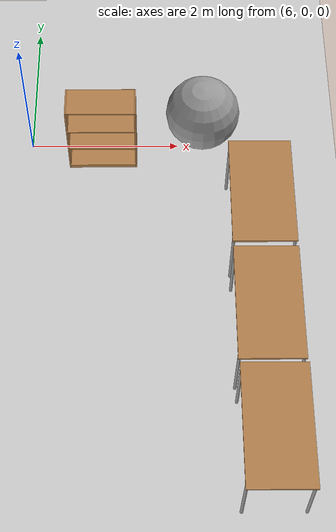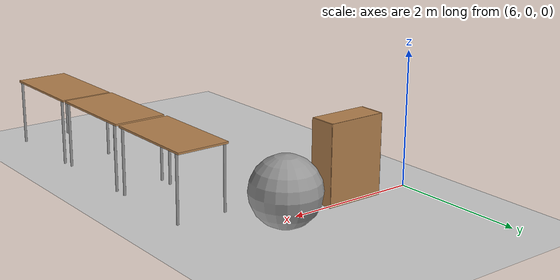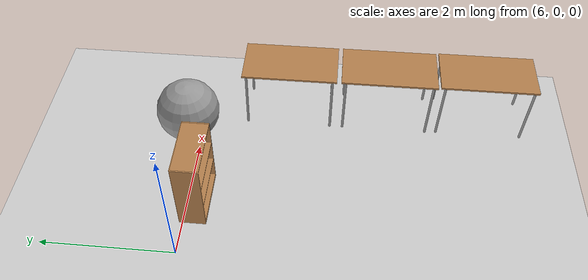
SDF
<sdf version="1.7">
 <world name="default">
  <model name="ground_plane">
   <static>1</static>
   <link name="link">
    <collision name="collision">
     <geometry><plane><normal>0 0 1</normal><size>100 100</size></plane></geometry>
     <surface><friction><ode><mu>100</mu><mu2>50</mu2></ode></friction></surface>
    </collision>
    <visual name="visual">
     <cast_shadows>0</cast_shadows>
     <geometry><plane><normal>0 0 1</normal><size>100 100</size></plane></geometry>
     <material>
      <script><uri>file://media/materials/scripts/gazebo.material</uri><name>Gazebo/Grey</name></script>
     </material>
    </visual>
   </link>
  </model>
  <model name="table_0">
   <static>1</static>
   <link name="link">
    <collision name="surface">
     <pose>0 0 1 0 -0 0</pose>
     <geometry><box><size>1.5 0.8 0.03</size></box></geometry>
     <surface><friction><ode><mu>0.6</mu><mu2>0.6</mu2></ode></friction></surface>
    </collision>
    <visual name="visual1">
     <pose>0 0 1 0 -0 0</pose>
     <geometry><box><size>1.5 0.8 0.03</size></box></geometry>
     <material>
      <script><uri>file://media/materials/scripts/gazebo.material</uri><name>Gazebo/Wood</name></script>
     </material>
    </visual>
    <collision name="front_left_leg">
     <pose>0.68 0.38 0.5 0 -0 0</pose>
     <geometry><cylinder><radius>0.02</radius><length>1</length></cylinder></geometry>
    </collision>
    <visual name="front_left_leg">
     <pose>0.68 0.38 0.5 0 -0 0</pose>
     <geometry><cylinder><radius>0.02</radius><length>1</length></cylinder></geometry>
     <material>
      <script><uri>file://media/materials/scripts/gazebo.material</uri><name>Gazebo/Grey</name></script>
     </material>
    </visual>
    <collision name="front_right_leg">
     <pose>0.68 -0.38 0.5 0 -0 0</pose>
     <geometry><cylinder><radius>0.02</radius><length>1</length></cylinder></geometry>
    </collision>
    <visual name="front_right_leg">
     <pose>0.68 -0.38 0.5 0 -0 0</pose>
     <geometry><cylinder><radius>0.02</radius><length>1</length></cylinder></geometry>
     <material>
      <script><uri>file://media/materials/scripts/gazebo.material</uri><name>Gazebo/Grey</name></script>
     </material>
    </visual>
    <collision name="back_right_leg">
     <pose>-0.68 -0.38 0.5 0 -0 0</pose>
     <geometry><cylinder><radius>0.02</radius><length>1</length></cylinder></geometry>
    </collision>
    <visual name="back_right_leg">
     <pose>-0.68 -0.38 0.5 0 -0 0</pose>
     <geometry><cylinder><radius>0.02</radius><length>1</length></cylinder></geometry>
     <material>
      <script><uri>file://media/materials/scripts/gazebo.material</uri><name>Gazebo/Grey</name></script>
     </material>
    </visual>
    <collision name="back_left_leg">
     <pose>-0.68 0.38 0.5 0 -0 0</pose>
     <geometry><cylinder><radius>0.02</radius><length>1</length></cylinder></geometry>
    </collision>
    <visual name="back_left_leg">
     <pose>-0.68 0.38 0.5 0 -0 0</pose>
     <geometry><cylinder><radius>0.02</radius><length>1</length></cylinder></geometry>
     <material>
      <script><uri>file://media/materials/scripts/gazebo.material</uri><name>Gazebo/Grey</name></script>
     </material>
    </visual>
   </link>
   <pose>9.03648 -1.38718 0 0 0 -1.56997</pose>
  </model>
  <model name="table_0_clone">
   <static>1</static>
   <link name="link">
    <collision name="surface">
     <pose>0 0 1 0 -0 0</pose>
     <geometry><box><size>1.5 0.8 0.03</size></box></geometry>
     <surface><friction><ode><mu>0.6</mu><mu2>0.6</mu2></ode></friction></surface>
    </collision>
    <visual name="visual1">
     <pose>0 0 1 0 -0 0</pose>
     <geometry><box><size>1.5 0.8 0.03</size></box></geometry>
     <material>
      <script><uri>file://media/materials/scripts/gazebo.material</uri><name>Gazebo/Wood</name></script>
     </material>
    </visual>
    <collision name="front_left_leg">
     <pose>0.68 0.38 0.5 0 -0 0</pose>
     <geometry><cylinder><radius>0.02</radius><length>1</length></cylinder></geometry>
    </collision>
    <visual name="front_left_leg">
     <pose>0.68 0.38 0.5 0 -0 0</pose>
     <geometry><cylinder><radius>0.02</radius><length>1</length></cylinder></geometry>
     <material>
      <script><uri>file://media/materials/scripts/gazebo.material</uri><name>Gazebo/Grey</name></script>
     </material>
    </visual>
    <collision name="front_right_leg">
     <pose>0.68 -0.38 0.5 0 -0 0</pose>
     <geometry><cylinder><radius>0.02</radius><length>1</length></cylinder></geometry>
    </collision>
    <visual name="front_right_leg">
     <pose>0.68 -0.38 0.5 0 -0 0</pose>
     <geometry><cylinder><radius>0.02</radius><length>1</length></cylinder></geometry>
     <material>
      <script><uri>file://media/materials/scripts/gazebo.material</uri><name>Gazebo/Grey</name></script>
     </material>
    </visual>
    <collision name="back_right_leg">
     <pose>-0.68 -0.38 0.5 0 -0 0</pose>
     <geometry><cylinder><radius>0.02</radius><length>1</length></cylinder></geometry>
    </collision>
    <visual name="back_right_leg">
     <pose>-0.68 -0.38 0.5 0 -0 0</pose>
     <geometry><cylinder><radius>0.02</radius><length>1</length></cylinder></geometry>
     <material>
      <script><uri>file://media/materials/scripts/gazebo.material</uri><name>Gazebo/Grey</name></script>
     </material>
    </visual>
    <collision name="back_left_leg">
     <pose>-0.68 0.38 0.5 0 -0 0</pose>
     <geometry><cylinder><radius>0.02</radius><length>1</length></cylinder></geometry>
    </collision>
    <visual name="back_left_leg">
     <pose>-0.68 0.38 0.5 0 -0 0</pose>
     <geometry><cylinder><radius>0.02</radius><length>1</length></cylinder></geometry>
     <material>
      <script><uri>file://media/materials/scripts/gazebo.material</uri><name>Gazebo/Grey</name></script>
     </material>
    </visual>
   </link>
   <pose>9.04137 -2.95696 0 0 0 -1.56997</pose>
  </model>
  <model name="table_0_clone_0">
   <static>1</static>
   <link name="link">
    <collision name="surface">
     <pose>0 0 1 0 -0 0</pose>
     <geometry><box><size>1.5 0.8 0.03</size></box></geometry>
     <surface><friction><ode><mu>0.6</mu><mu2>0.6</mu2></ode></friction></surface>
    </collision>
    <visual name="visual1">
     <pose>0 0 1 0 -0 0</pose>
     <geometry><box><size>1.5 0.8 0.03</size></box></geometry>
     <material>
      <script><uri>file://media/materials/scripts/gazebo.material</uri><name>Gazebo/Wood</name></script>
     </material>
    </visual>
    <collision name="front_left_leg">
     <pose>0.68 0.38 0.5 0 -0 0</pose>
     <geometry><cylinder><radius>0.02</radius><length>1</length></cylinder></geometry>
    </collision>
    <visual name="front_left_leg">
     <pose>0.68 0.38 0.5 0 -0 0</pose>
     <geometry><cylinder><radius>0.02</radius><length>1</length></cylinder></geometry>
     <material>
      <script><uri>file://media/materials/scripts/gazebo.material</uri><name>Gazebo/Grey</name></script>
     </material>
    </visual>
    <collision name="front_right_leg">
     <pose>0.68 -0.38 0.5 0 -0 0</pose>
     <geometry><cylinder><radius>0.02</radius><length>1</length></cylinder></geometry>
    </collision>
    <visual name="front_right_leg">
     <pose>0.68 -0.38 0.5 0 -0 0</pose>
     <geometry><cylinder><radius>0.02</radius><length>1</length></cylinder></geometry>
     <material>
      <script><uri>file://media/materials/scripts/gazebo.material</uri><name>Gazebo/Grey</name></script>
     </material>
    </visual>
    <collision name="back_right_leg">
     <pose>-0.68 -0.38 0.5 0 -0 0</pose>
     <geometry><cylinder><radius>0.02</radius><length>1</length></cylinder></geometry>
    </collision>
    <visual name="back_right_leg">
     <pose>-0.68 -0.38 0.5 0 -0 0</pose>
     <geometry><cylinder><radius>0.02</radius><length>1</length></cylinder></geometry>
     <material>
      <script><uri>file://media/materials/scripts/gazebo.material</uri><name>Gazebo/Grey</name></script>
     </material>
    </visual>
    <collision name="back_left_leg">
     <pose>-0.68 0.38 0.5 0 -0 0</pose>
     <geometry><cylinder><radius>0.02</radius><length>1</length></cylinder></geometry>
    </collision>
    <visual name="back_left_leg">
     <pose>-0.68 0.38 0.5 0 -0 0</pose>
     <geometry><cylinder><radius>0.02</radius><length>1</length></cylinder></geometry>
     <material>
      <script><uri>file://media/materials/scripts/gazebo.material</uri><name>Gazebo/Grey</name></script>
     </material>
    </visual>
   </link>
   <pose>9.05932 -4.49875 0 0 0 -1.56997</pose>
  </model>
  <model name="unit_sphere_0">
   <pose>8.342 0.205176 0.5 0 -0 0</pose>
   <link name="link">
    <inertial>
     <mass>1</mass>
     <inertia><ixx>0.1</ixx><ixy>0</ixy><ixz>0</ixz><iyy>0.1</iyy><iyz>0</iyz><izz>0.1</izz></inertia>
    </inertial>
    <collision name="collision"><geometry><sphere><radius>0.5</radius></sphere></geometry></collision>
    <visual name="visual">
     <geometry><sphere><radius>0.5</radius></sphere></geometry>
     <material>
      <script><name>Gazebo/Grey</name><uri>file://media/materials/scripts/gazebo.material</uri></script>
     </material>
    </visual>
   </link>
  </model>
  <model name="bookshelf_3">
   <static>1</static>
   <link name="link">
    <inertial><mass>1</mass></inertial>
    <collision name="back">
     <pose>0 0.005 0.6 0 -0 0</pose>
     <geometry><box><size>0.9 0.01 1.2</size></box></geometry>
    </collision>
    <visual name="visual1">
     <pose>0 0.005 0.6 0 -0 0</pose>
     <geometry><box><size>0.9 0.01 1.2</size></box></geometry>
     <material>
      <script><uri>file://media/materials/scripts/gazebo.material</uri><name>Gazebo/Wood</name></script>
     </material>
    </visual>
    <collision name="left_side">
     <pose>0.45 -0.195 0.6 0 -0 0</pose>
     <geometry><box><size>0.02 0.4 1.2</size></box></geometry>
    </collision>
    <visual name="visual2">
     <pose>0.45 -0.195 0.6 0 -0 0</pose>
     <geometry><box><size>0.02 0.4 1.2</size></box></geometry>
     <material>
      <script><uri>file://media/materials/scripts/gazebo.material</uri><name>Gazebo/Wood</name></script>
     </material>
    </visual>
    <collision name="right_side">
     <pose>-0.45 -0.195 0.6 0 -0 0</pose>
     <geometry><box><size>0.02 0.4 1.2</size></box></geometry>
    </collision>
    <visual name="visual3">
     <pose>-0.45 -0.195 0.6 0 -0 0</pose>
     <geometry><box><size>0.02 0.4 1.2</size></box></geometry>
     <material>
      <script><uri>file://media/materials/scripts/gazebo.material</uri><name>Gazebo/Wood</name></script>
     </material>
    </visual>
    <collision name="bottom">
     <pose>0 -0.195 0.03 0 -0 0</pose>
     <geometry><box><size>0.88 0.4 0.06</size></box></geometry>
    </collision>
    <visual name="visual4">
     <pose>0 -0.195 0.03 0 -0 0</pose>
     <geometry><box><size>0.88 0.4 0.06</size></box></geometry>
     <material>
      <script><uri>file://media/materials/scripts/gazebo.material</uri><name>Gazebo/Wood</name></script>
     </material>
    </visual>
    <collision name="top">
     <pose>0 -0.195 1.19 0 -0 0</pose>
     <geometry><box><size>0.88 0.4 0.02</size></box></geometry>
    </collision>
    <visual name="visual5">
     <pose>0 -0.195 1.19 0 -0 0</pose>
     <geometry><box><size>0.88 0.4 0.02</size></box></geometry>
     <material>
      <script><uri>file://media/materials/scripts/gazebo.material</uri><name>Gazebo/Wood</name></script>
     </material>
    </visual>
    <collision name="low_shelf">
     <pose>0 -0.195 0.43 0 -0 0</pose>
     <geometry><box><size>0.88 0.4 0.02</size></box></geometry>
    </collision>
    <visual name="visual6">
     <pose>0 -0.195 0.43 0 -0 0</pose>
     <geometry><box><size>0.88 0.4 0.02</size></box></geometry>
     <material>
      <script><uri>file://media/materials/scripts/gazebo.material</uri><name>Gazebo/Wood</name></script>
     </material>
    </visual>
    <collision name="high_shelf">
     <pose>0 -0.195 0.8 0 -0 0</pose>
     <geometry><box><size>0.88 0.4 0.02</size></box></geometry>
    </collision>
    <visual name="visual7">
     <pose>0 -0.195 0.8 0 -0 0</pose>
     <geometry><box><size>0.88 0.4 0.02</size></box></geometry>
     <material>
      <script><uri>file://media/materials/scripts/gazebo.material</uri><name>Gazebo/Wood</name></script>
     </material>
    </visual>
   </link>
   <pose>6.98215 0.046344 0 0 -0 0</pose>
  </model>
 </world>
</sdf>
